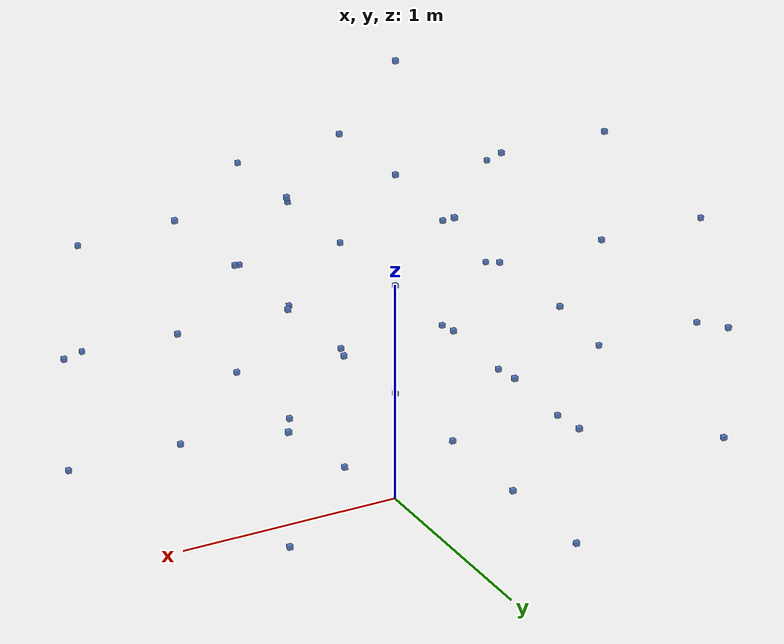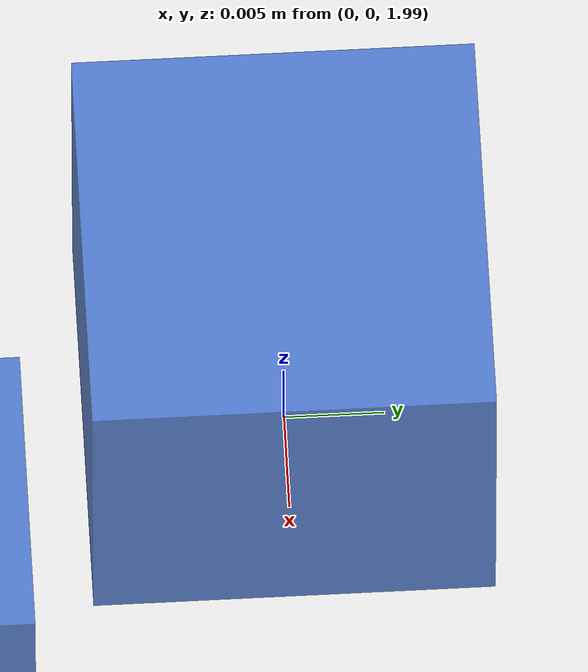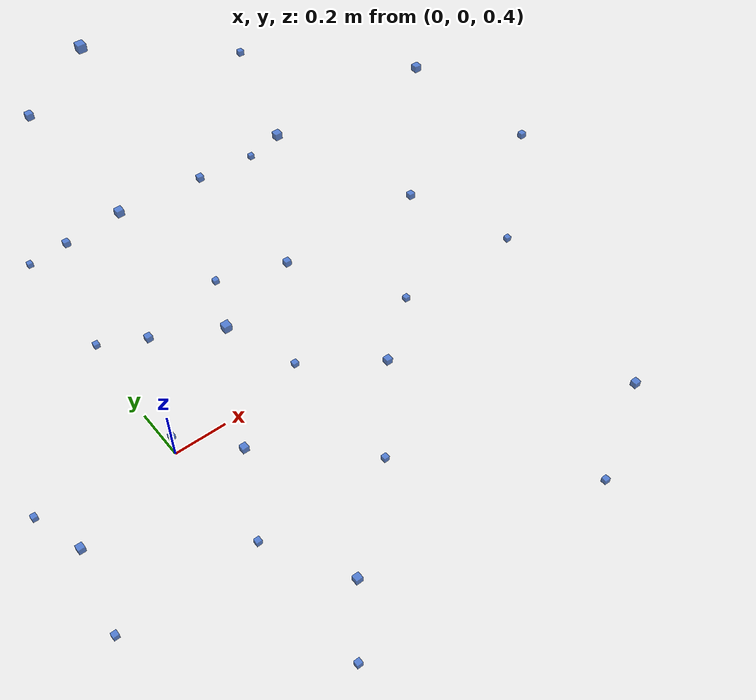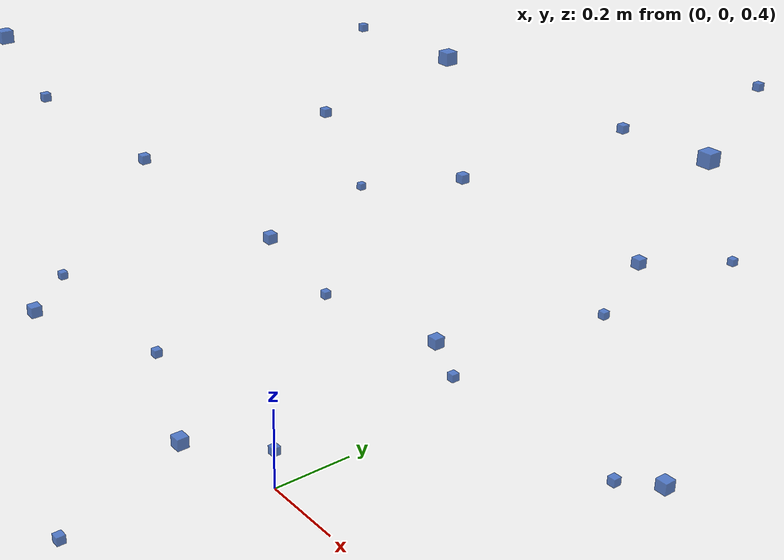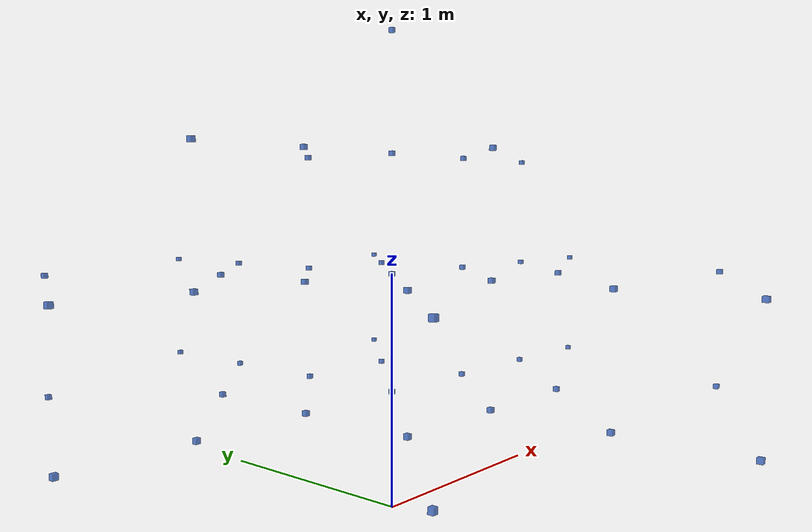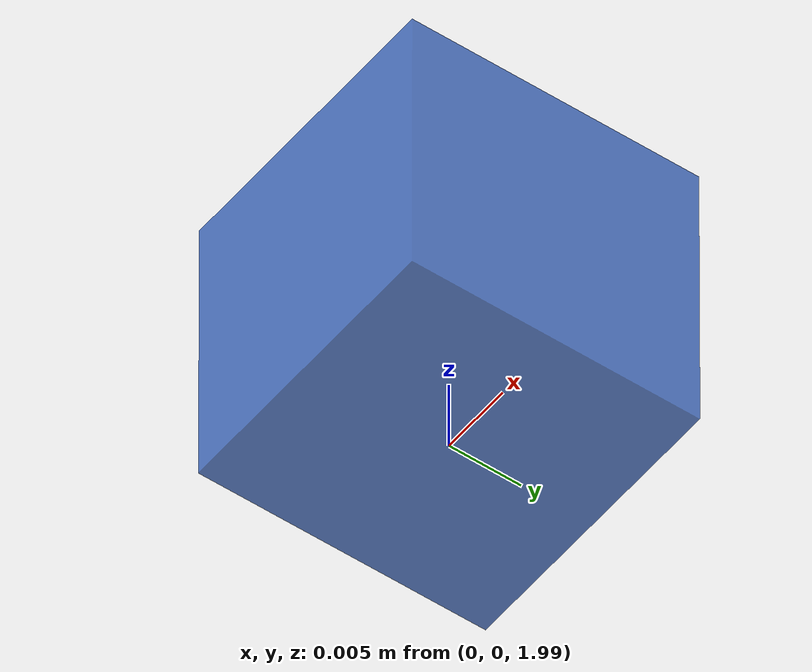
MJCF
<?xml version="1.0" ?>
<mujoco model="mocap_boxes">
  <compiler angle="radian" coordinate="local" inertiafromgeom="true"/>

  <option timestep="0.01" integrator="Euler"/>

  <default>
    <geom conaffinity="1" condim="3" material="matgeom" rgba="0.8 0.6 0.4 1" size="1 1 1" type="box"/>
    <joint armature="1" damping="1" limited="true"/>
    <motor ctrllimited="true" ctrlrange="-1 1"/>
  </default>

  <asset>
    <texture builtin="gradient" height="100" rgb1="1 1 1" rgb2="0 0 0" type="skybox" width="100"/>
    <texture builtin="flat" height="1278" mark="cross" markrgb="1 1 1" name="texgeom" random="0.01" rgb1="0.8 0.6 0.4" rgb2="0.8 0.6 0.4" type="cube" width="127"/>
    <texture builtin="checker" height="100" name="texplane" rgb1="0 0 0" rgb2="0.8 0.8 0.8" type="2d" width="100"/>
    <material name="MatPlane" reflectance="0.5" shininess="1" specular="1" texrepeat="60 60" texture="texplane"/>
    <material name="matgeom" texture="texgeom" texuniform="true"/>
  </asset>

  <worldbody>
    <light cutoff="100" diffuse="1 1 1" dir="-0 0 -1.3" directional="true" exponent="1" pos="0 0 1.3" specular=".1 .1 .1"/>

    <!-- Mocap Body 1 -->
    <body name="mocap_body_1" pos="0 0 0.5" mocap="true">
      <geom name="box_1" type="box" size="0.01 0.01 0.01" rgba="0.2 0.4 0.8 0.8"/>
    </body>

    <!-- Mocap Body 2 -->
    <body name="mocap_body_2" pos="0.5 0 0.5" mocap="true">
      <geom name="box_2" type="box" size="0.01 0.01 0.01" rgba="0.2 0.4 0.8 0.8"/>
    </body>

    <!-- Mocap Body 3 -->
    <body name="mocap_body_3" pos="-0.5 0 0.5" mocap="true">
      <geom name="box_3" type="box" size="0.01 0.01 0.01" rgba="0.2 0.4 0.8 0.8"/>
    </body>

    <!-- Mocap Body 4 -->
    <body name="mocap_body_4" pos="0 0.5 0.5" mocap="true">
      <geom name="box_4" type="box" size="0.01 0.01 0.01" rgba="0.2 0.4 0.8 0.8"/>
    </body>

    <!-- Mocap Body 5 -->
    <body name="mocap_body_5" pos="0 -0.5 0.5" mocap="true">
      <geom name="box_5" type="box" size="0.01 0.01 0.01" rgba="0.2 0.4 0.8 0.8"/>
    </body>

    <!-- Mocap Body 6 -->
    <body name="mocap_body_6" pos="1 0 0.5" mocap="true">
      <geom name="box_6" type="box" size="0.01 0.01 0.01" rgba="0.2 0.4 0.8 0.8"/>
    </body>

    <!-- Mocap Body 7 -->
    <body name="mocap_body_7" pos="-1 0 0.5" mocap="true">
      <geom name="box_7" type="box" size="0.01 0.01 0.01" rgba="0.2 0.4 0.8 0.8"/>
    </body>

    <!-- Mocap Body 8 -->
    <body name="mocap_body_8" pos="0 1 0.5" mocap="true">
      <geom name="box_8" type="box" size="0.01 0.01 0.01" rgba="0.2 0.4 0.8 0.8"/>
    </body>

    <!-- Mocap Body 9 -->
    <body name="mocap_body_9" pos="0 -1 0.5" mocap="true">
      <geom name="box_9" type="box" size="0.01 0.01 0.01" rgba="0.2 0.4 0.8 0.8"/>
    </body>

    <!-- Mocap Body 10 -->
    <body name="mocap_body_10" pos="0.5 0.5 0.5" mocap="true">
      <geom name="box_10" type="box" size="0.01 0.01 0.01" rgba="0.2 0.4 0.8 0.8"/>
    </body>

    <!-- Mocap Body 11 -->
    <body name="mocap_body_11" pos="-0.5 0.5 0.5" mocap="true">
      <geom name="box_11" type="box" size="0.01 0.01 0.01" rgba="0.2 0.4 0.8 0.8"/>
    </body>

    <!-- Mocap Body 12 -->
    <body name="mocap_body_12" pos="0.5 -0.5 0.5" mocap="true">
      <geom name="box_12" type="box" size="0.01 0.01 0.01" rgba="0.2 0.4 0.8 0.8"/>
    </body>

    <!-- Mocap Body 13 -->
    <body name="mocap_body_13" pos="-0.5 -0.5 0.5" mocap="true">
      <geom name="box_13" type="box" size="0.01 0.01 0.01" rgba="0.2 0.4 0.8 0.8"/>
    </body>

    <!-- Mocap Body 14 -->
    <body name="mocap_body_14" pos="1.5 0 0.5" mocap="true">
      <geom name="box_14" type="box" size="0.01 0.01 0.01" rgba="0.2 0.4 0.8 0.8"/>
    </body>

    <!-- Mocap Body 15 -->
    <body name="mocap_body_15" pos="-1.5 0 0.5" mocap="true">
      <geom name="box_15" type="box" size="0.01 0.01 0.01" rgba="0.2 0.4 0.8 0.8"/>
    </body>

    <!-- Mocap Body 16 -->
    <body name="mocap_body_16" pos="0 1.5 0.5" mocap="true">
      <geom name="box_16" type="box" size="0.01 0.01 0.01" rgba="0.2 0.4 0.8 0.8"/>
    </body>

    <!-- Mocap Body 17 -->
    <body name="mocap_body_17" pos="0 -1.5 0.5" mocap="true">
      <geom name="box_17" type="box" size="0.01 0.01 0.01" rgba="0.2 0.4 0.8 0.8"/>
    </body>

    <!-- Mocap Body 18 -->
    <body name="mocap_body_18" pos="1 1 0.5" mocap="true">
      <geom name="box_18" type="box" size="0.01 0.01 0.01" rgba="0.2 0.4 0.8 0.8"/>
    </body>

    <!-- Mocap Body 19 -->
    <body name="mocap_body_19" pos="-1 1 0.5" mocap="true">
      <geom name="box_19" type="box" size="0.01 0.01 0.01" rgba="0.2 0.4 0.8 0.8"/>
    </body>

    <!-- Mocap Body 20 -->
    <body name="mocap_body_20" pos="1 -1 0.5" mocap="true">
      <geom name="box_20" type="box" size="0.01 0.01 0.01" rgba="0.2 0.4 0.8 0.8"/>
    </body>

    <!-- Mocap Body 21 -->
    <body name="mocap_body_21" pos="-1 -1 0.5" mocap="true">
      <geom name="box_21" type="box" size="0.01 0.01 0.01" rgba="0.2 0.4 0.8 0.8"/>
    </body>

    <!-- Mocap Body 22 -->
    <body name="mocap_body_22" pos="0 0 1" mocap="true">
      <geom name="box_22" type="box" size="0.01 0.01 0.01" rgba="0.2 0.4 0.8 0.8"/>
    </body>

    <!-- Mocap Body 23 -->
    <body name="mocap_body_23" pos="0.5 0 1" mocap="true">
      <geom name="box_23" type="box" size="0.01 0.01 0.01" rgba="0.2 0.4 0.8 0.8"/>
    </body>

    <!-- Mocap Body 24 -->
    <body name="mocap_body_24" pos="-0.5 0 1" mocap="true">
      <geom name="box_24" type="box" size="0.01 0.01 0.01" rgba="0.2 0.4 0.8 0.8"/>
    </body>

    <!-- Mocap Body 25 -->
    <body name="mocap_body_25" pos="0 0.5 1" mocap="true">
      <geom name="box_25" type="box" size="0.01 0.01 0.01" rgba="0.2 0.4 0.8 0.8"/>
    </body>

    <!-- Mocap Body 26 -->
    <body name="mocap_body_26" pos="0 -0.5 1" mocap="true">
      <geom name="box_26" type="box" size="0.01 0.01 0.01" rgba="0.2 0.4 0.8 0.8"/>
    </body>

    <!-- Mocap Body 27 -->
    <body name="mocap_body_27" pos="1 0 1" mocap="true">
      <geom name="box_27" type="box" size="0.01 0.01 0.01" rgba="0.2 0.4 0.8 0.8"/>
    </body>

    <!-- Mocap Body 28 -->
    <body name="mocap_body_28" pos="-1 0 1" mocap="true">
      <geom name="box_28" type="box" size="0.01 0.01 0.01" rgba="0.2 0.4 0.8 0.8"/>
    </body>

    <!-- Mocap Body 29 -->
    <body name="mocap_body_29" pos="0 1 1" mocap="true">
      <geom name="box_29" type="box" size="0.01 0.01 0.01" rgba="0.2 0.4 0.8 0.8"/>
    </body>

    <!-- Mocap Body 30 -->
    <body name="mocap_body_30" pos="0 -1 1" mocap="true">
      <geom name="box_30" type="box" size="0.01 0.01 0.01" rgba="0.2 0.4 0.8 0.8"/>
    </body>

    <!-- Mocap Body 31 -->
    <body name="mocap_body_31" pos="0.5 0.5 1" mocap="true">
      <geom name="box_31" type="box" size="0.01 0.01 0.01" rgba="0.2 0.4 0.8 0.8"/>
    </body>

    <!-- Mocap Body 32 -->
    <body name="mocap_body_32" pos="-0.5 0.5 1" mocap="true">
      <geom name="box_32" type="box" size="0.01 0.01 0.01" rgba="0.2 0.4 0.8 0.8"/>
    </body>

    <!-- Mocap Body 33 -->
    <body name="mocap_body_33" pos="0.5 -0.5 1" mocap="true">
      <geom name="box_33" type="box" size="0.01 0.01 0.01" rgba="0.2 0.4 0.8 0.8"/>
    </body>

    <!-- Mocap Body 34 -->
    <body name="mocap_body_34" pos="-0.5 -0.5 1" mocap="true">
      <geom name="box_34" type="box" size="0.01 0.01 0.01" rgba="0.2 0.4 0.8 0.8"/>
    </body>

    <!-- Mocap Body 35 -->
    <body name="mocap_body_35" pos="1.5 0 1" mocap="true">
      <geom name="box_35" type="box" size="0.01 0.01 0.01" rgba="0.2 0.4 0.8 0.8"/>
    </body>

    <!-- Mocap Body 36 -->
    <body name="mocap_body_36" pos="-1.5 0 1" mocap="true">
      <geom name="box_36" type="box" size="0.01 0.01 0.01" rgba="0.2 0.4 0.8 0.8"/>
    </body>

    <!-- Mocap Body 37 -->
    <body name="mocap_body_37" pos="0 1.5 1" mocap="true">
      <geom name="box_37" type="box" size="0.01 0.01 0.01" rgba="0.2 0.4 0.8 0.8"/>
    </body>

    <!-- Mocap Body 38 -->
    <body name="mocap_body_38" pos="0 -1.5 1" mocap="true">
      <geom name="box_38" type="box" size="0.01 0.01 0.01" rgba="0.2 0.4 0.8 0.8"/>
    </body>

    <!-- Mocap Body 39 -->
    <body name="mocap_body_39" pos="1 1 1" mocap="true">
      <geom name="box_39" type="box" size="0.01 0.01 0.01" rgba="0.2 0.4 0.8 0.8"/>
    </body>

    <!-- Mocap Body 40 -->
    <body name="mocap_body_40" pos="-1 1 1" mocap="true">
      <geom name="box_40" type="box" size="0.01 0.01 0.01" rgba="0.2 0.4 0.8 0.8"/>
    </body>

    <!-- Mocap Body 41 -->
    <body name="mocap_body_41" pos="1 -1 1" mocap="true">
      <geom name="box_41" type="box" size="0.01 0.01 0.01" rgba="0.2 0.4 0.8 0.8"/>
    </body>

    <!-- Mocap Body 42 -->
    <body name="mocap_body_42" pos="-1 -1 1" mocap="true">
      <geom name="box_42" type="box" size="0.01 0.01 0.01" rgba="0.2 0.4 0.8 0.8"/>
    </body>

    <!-- Mocap Body 43 -->
    <body name="mocap_body_43" pos="0 0 1.5" mocap="true">
      <geom name="box_43" type="box" size="0.01 0.01 0.01" rgba="0.2 0.4 0.8 0.8"/>
    </body>

    <!-- Mocap Body 44 -->
    <body name="mocap_body_44" pos="0.5 0 1.5" mocap="true">
      <geom name="box_44" type="box" size="0.01 0.01 0.01" rgba="0.2 0.4 0.8 0.8"/>
    </body>

    <!-- Mocap Body 45 -->
    <body name="mocap_body_45" pos="-0.5 0 1.5" mocap="true">
      <geom name="box_45" type="box" size="0.01 0.01 0.01" rgba="0.2 0.4 0.8 0.8"/>
    </body>

    <!-- Mocap Body 46 -->
    <body name="mocap_body_46" pos="0 0.5 1.5" mocap="true">
      <geom name="box_46" type="box" size="0.01 0.01 0.01" rgba="0.2 0.4 0.8 0.8"/>
    </body>

    <!-- Mocap Body 47 -->
    <body name="mocap_body_47" pos="0 -0.5 1.5" mocap="true">
      <geom name="box_47" type="box" size="0.01 0.01 0.01" rgba="0.2 0.4 0.8 0.8"/>
    </body>

    <!-- Mocap Body 48 -->
    <body name="mocap_body_48" pos="1 0 1.5" mocap="true">
      <geom name="box_48" type="box" size="0.01 0.01 0.01" rgba="0.2 0.4 0.8 0.8"/>
    </body>

    <!-- Mocap Body 49 -->
    <body name="mocap_body_49" pos="-1 0 1.5" mocap="true">
      <geom name="box_49" type="box" size="0.01 0.01 0.01" rgba="0.2 0.4 0.8 0.8"/>
    </body>

    <!-- Mocap Body 50 -->
    <body name="mocap_body_50" pos="0 0 2" mocap="true">
      <geom name="box_50" type="box" size="0.01 0.01 0.01" rgba="0.2 0.4 0.8 0.8"/>
    </body>

    <body name="mocap_body_51" pos="0 0 2" mocap="true">
      <geom name="box_51" type="box" size="0.01 0.01 0.01" rgba="0.2 0.4 0.8 0.8"/>
    </body>

    <body name="mocap_body_52" pos="0 0 2" mocap="true">
      <geom name="box_52" type="box" size="0.01 0.01 0.01" rgba="0.2 0.4 0.8 0.8"/>
    </body>

    <body name="mocap_body_53" pos="0 0 2" mocap="true">
      <geom name="box_53" type="box" size="0.01 0.01 0.01" rgba="0.2 0.4 0.8 0.8"/>
    </body>

    <body name="mocap_body_54" pos="0 0 2" mocap="true">
      <geom name="box_54" type="box" size="0.01 0.01 0.01" rgba="0.2 0.4 0.8 0.8"/>
    </body>

  </worldbody>
</mujoco>
